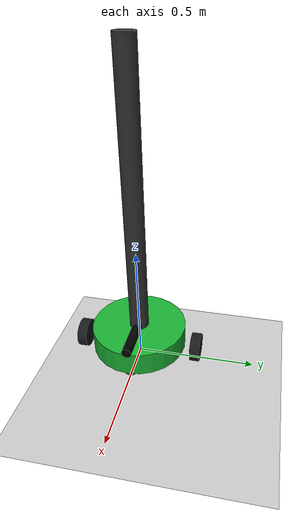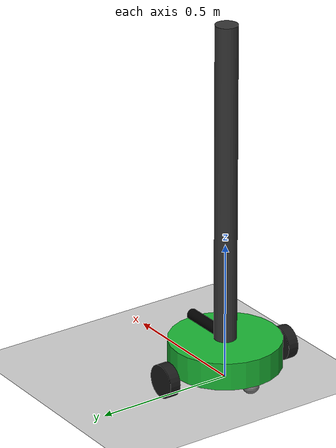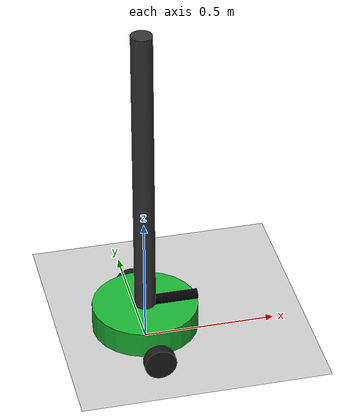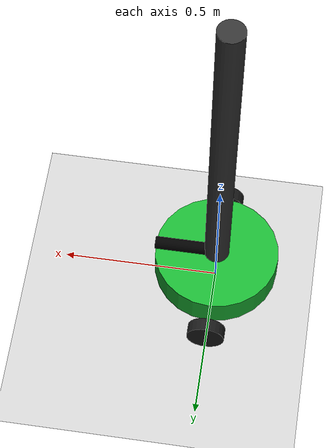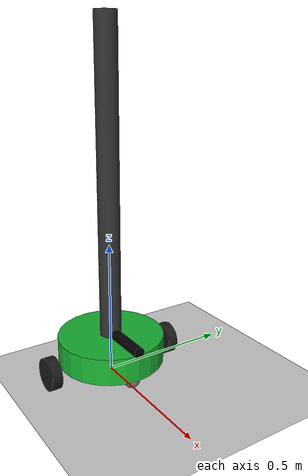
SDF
<sdf version="1.9">
 <world name="empty">
  <plugin filename="ignition-gazebo-physics-system" name="ignition::gazebo::systems::Physics"/>
  <plugin filename="ignition-gazebo-user-commands-system" name="ignition::gazebo::systems::UserCommands"/>
  <plugin filename="ignition-gazebo-scene-broadcaster-system" name="ignition::gazebo::systems::SceneBroadcaster"/>
  <plugin filename="ignition-gazebo-sensors-system" name="ignition::gazebo::systems::Sensors">
   <render_engine>ogre2</render_engine>
  </plugin>
  <physics name="ode_200hz" type="ode">
   <max_step_size>0.005</max_step_size>
   <real_time_factor>1.0</real_time_factor>
   <real_time_update_rate>200</real_time_update_rate>
  </physics>
  <scene><ambient>0.6 0.6 0.6 1</ambient><background>0.7 0.7 0.85 1</background><shadows>false</shadows></scene>
  <light type="directional" name="sun">
   <cast_shadows>false</cast_shadows>
   <pose>0 0 10 0 0 0</pose>
   <diffuse>1 1 1 1</diffuse>
   <specular>0.2 0.2 0.2 1</specular>
   <direction>-0.5 0.1 -0.9</direction>
  </light>
  <model name="ground_plane">
   <static>true</static>
   <link name="link">
    <collision name="collision">
     <geometry><plane><normal>0 0 1</normal><size>100 100</size></plane></geometry>
     <surface><friction><ode><mu>1.5</mu><mu2>1.5</mu2></ode></friction></surface>
    </collision>
    <visual name="visual">
     <geometry><plane><normal>0 0 1</normal><size>100 100</size></plane></geometry>
     <material>
      <ambient>0.8 0.8 0.8 1</ambient>
      <diffuse>0.8 0.8 0.8 1</diffuse>
      <specular>0.1 0.1 0.1 1</specular>
     </material>
    </visual>
   </link>
  </model>
  <model name="follower">
   <link name="chassis">
    <pose>0 0 0.10 0 0 0</pose>
    <inertial>
     <pose>0 0 -0.04 0 0 0</pose>
     <mass>25.0</mass>
     <inertia><ixx>0.27</ixx><iyy>0.27</iyy><izz>0.50</izz><ixy>0</ixy><ixz>0</ixz><iyz>0</iyz></inertia>
    </inertial>
    <visual name="body_visual">
     <geometry><cylinder><radius>0.20</radius><length>0.10</length></cylinder></geometry>
     <material><ambient>0.1 0.7 0.2 1</ambient><diffuse>0.1 0.7 0.2 1</diffuse></material>
    </visual>
    <collision name="body_collision">
     <geometry><cylinder><radius>0.20</radius><length>0.10</length></cylinder></geometry>
    </collision>
    <visual name="heading_arrow">
     <pose>0.10 0 0.06 0 1.5708 0</pose>
     <geometry><cylinder><radius>0.02</radius><length>0.20</length></cylinder></geometry>
     <material><diffuse>0 0 0 1</diffuse></material>
    </visual>
    <visual name="mast_visual">
     <pose>0 0 0.60 0 0 0</pose>
     <geometry><cylinder><radius>0.04</radius><length>1.20</length></cylinder></geometry>
     <material><ambient>0.20 0.20 0.20 1</ambient><diffuse>0.20 0.20 0.20 1</diffuse></material>
    </visual>
    <visual name="caster_front_visual">
     <pose>0.15 0 -0.07 0 0 0</pose>
     <geometry><sphere><radius>0.03</radius></sphere></geometry>
     <material><diffuse>0.5 0.5 0.5 1</diffuse></material>
    </visual>
    <collision name="caster_front_collision">
     <pose>0.15 0 -0.07 0 0 0</pose>
     <geometry><sphere><radius>0.03</radius></sphere></geometry>
     <surface><friction><ode><mu>0.0</mu><mu2>0.0</mu2></ode></friction></surface>
    </collision>
    <visual name="caster_back_visual">
     <pose>-0.15 0 -0.07 0 0 0</pose>
     <geometry><sphere><radius>0.03</radius></sphere></geometry>
     <material><diffuse>0.5 0.5 0.5 1</diffuse></material>
    </visual>
    <collision name="caster_back_collision">
     <pose>-0.15 0 -0.07 0 0 0</pose>
     <geometry><sphere><radius>0.03</radius></sphere></geometry>
     <surface><friction><ode><mu>0.0</mu><mu2>0.0</mu2></ode></friction></surface>
    </collision>
    <sensor name="lidar" type="gpu_lidar">
     <pose>0 0 0.085 0 0 0</pose>
     <topic>/follower/scan</topic>
     <update_rate>20</update_rate>
     <always_on>1</always_on>
     <visualize>true</visualize>
     <gz_frame_id>follower/lidar_link</gz_frame_id>
     <lidar>
      <scan>
       <horizontal>
        <samples>72</samples>
        <resolution>1</resolution>
        <min_angle>-3.14159265</min_angle>
        <max_angle>3.14159265</max_angle>
       </horizontal>
       <vertical>
        <samples>1</samples>
        <resolution>1</resolution>
        <min_angle>0</min_angle>
        <max_angle>0</max_angle>
       </vertical>
      </scan>
      <range><min>0.12</min><max>8.0</max><resolution>0.01</resolution></range>
     </lidar>
    </sensor>
    <sensor name="rgbd_camera" type="rgbd_camera">
     <pose>0.10 0 1.20 0 0 0</pose>
     <topic>/follower/camera</topic>
     <update_rate>20</update_rate>
     <always_on>1</always_on>
     <visualize>false</visualize>
     <gz_frame_id>follower/camera_optical_frame</gz_frame_id>
     <camera>
      <horizontal_fov>1.5708</horizontal_fov>
      <image><width>320</width><height>240</height><format>R8G8B8</format></image>
      <clip><near>0.1</near><far>10.0</far></clip>
     </camera>
    </sensor>
   </link>
   <joint name="left_wheel_joint" type="revolute">
    <pose relative_to="chassis">0 0.25 -0.04 -1.5708 0 0</pose>
    <parent>chassis</parent>
    <child>left_wheel</child>
    <axis>
     <xyz expressed_in="__model__">0 1 0</xyz>
     <limit><lower>-1.79e308</lower><upper>1.79e308</upper></limit>
     <dynamics><damping>0.05</damping><friction>0.05</friction></dynamics>
    </axis>
   </joint>
   <link name="left_wheel">
    <pose relative_to="left_wheel_joint">0 0 0 0 0 0</pose>
    <inertial>
     <mass>0.5</mass>
     <inertia><ixx>0.0005</ixx><iyy>0.0005</iyy><izz>0.0009</izz><ixy>0</ixy><ixz>0</ixz><iyz>0</iyz></inertia>
    </inertial>
    <visual name="visual">
     <geometry><cylinder><radius>0.06</radius><length>0.04</length></cylinder></geometry>
     <material><diffuse>0.1 0.1 0.1 1</diffuse></material>
    </visual>
    <collision name="collision">
     <geometry><cylinder><radius>0.06</radius><length>0.04</length></cylinder></geometry>
     <surface><friction><ode><mu>1.5</mu><mu2>1.5</mu2></ode></friction></surface>
    </collision>
   </link>
   <joint name="right_wheel_joint" type="revolute">
    <pose relative_to="chassis">0 -0.25 -0.04 -1.5708 0 0</pose>
    <parent>chassis</parent>
    <child>right_wheel</child>
    <axis>
     <xyz expressed_in="__model__">0 1 0</xyz>
     <limit><lower>-1.79e308</lower><upper>1.79e308</upper></limit>
     <dynamics><damping>0.05</damping><friction>0.05</friction></dynamics>
    </axis>
   </joint>
   <link name="right_wheel">
    <pose relative_to="right_wheel_joint">0 0 0 0 0 0</pose>
    <inertial>
     <mass>0.5</mass>
     <inertia><ixx>0.0005</ixx><iyy>0.0005</iyy><izz>0.0009</izz><ixy>0</ixy><ixz>0</ixz><iyz>0</iyz></inertia>
    </inertial>
    <visual name="visual">
     <geometry><cylinder><radius>0.06</radius><length>0.04</length></cylinder></geometry>
     <material><diffuse>0.1 0.1 0.1 1</diffuse></material>
    </visual>
    <collision name="collision">
     <geometry><cylinder><radius>0.06</radius><length>0.04</length></cylinder></geometry>
     <surface><friction><ode><mu>1.5</mu><mu2>1.5</mu2></ode></friction></surface>
    </collision>
   </link>
   <plugin filename="ignition-gazebo-velocity-control-system" name="ignition::gazebo::systems::VelocityControl">
    <topic>/follower/cmd_vel</topic>
   </plugin>
   <plugin filename="ignition-gazebo-joint-state-publisher-system" name="ignition::gazebo::systems::JointStatePublisher">
    <topic>/follower/joint_states</topic>
   </plugin>
   <plugin filename="ignition-gazebo-pose-publisher-system" name="ignition::gazebo::systems::PosePublisher">
    <publish_link_pose>false</publish_link_pose>
    <publish_visual_pose>false</publish_visual_pose>
    <publish_collision_pose>false</publish_collision_pose>
    <publish_sensor_pose>false</publish_sensor_pose>
    <publish_model_pose>true</publish_model_pose>
    <publish_nested_model_pose>false</publish_nested_model_pose>
    <use_pose_vector_msg>true</use_pose_vector_msg>
    <update_frequency>30</update_frequency>
   </plugin>
  </model>
 </world>
</sdf>
